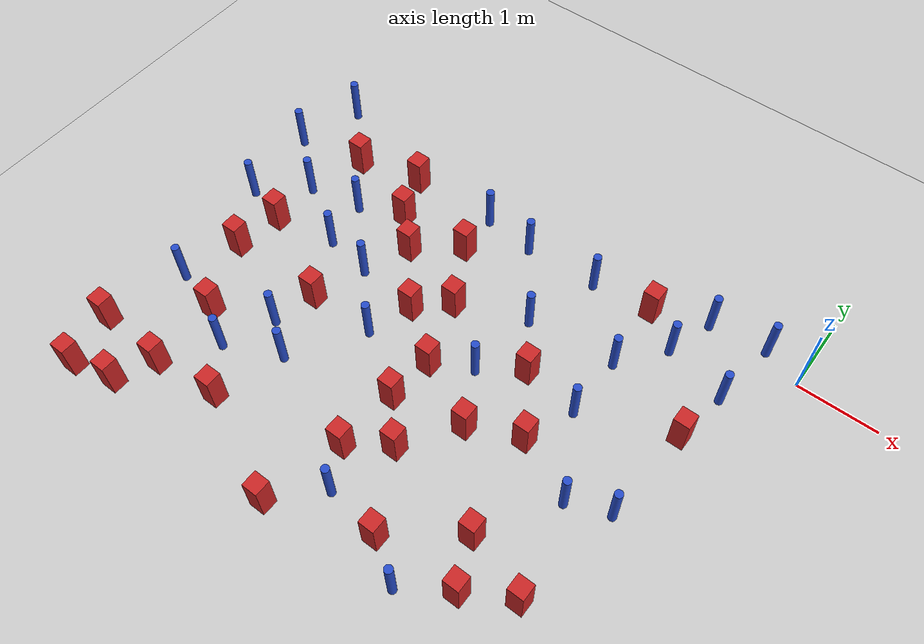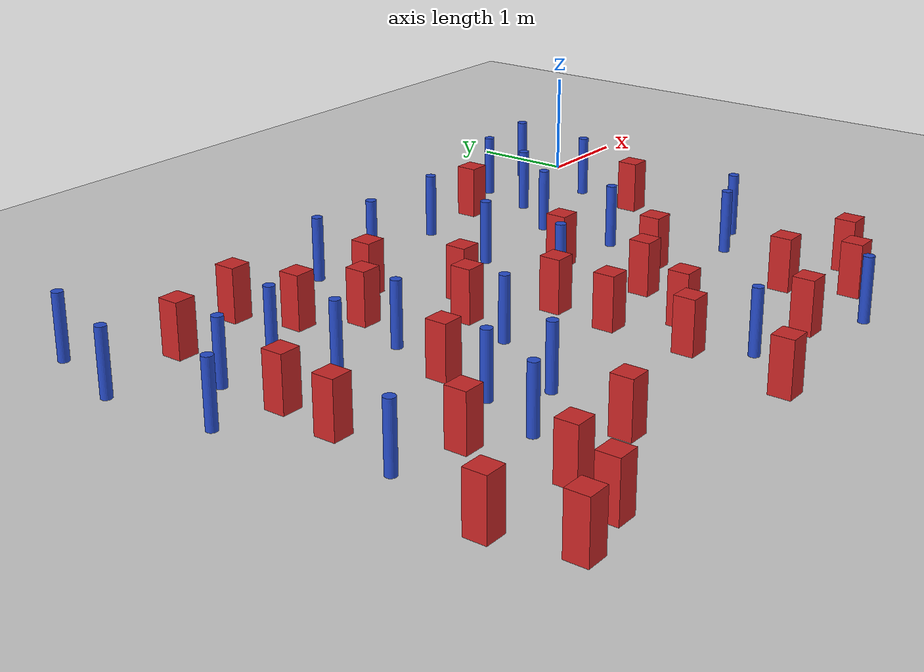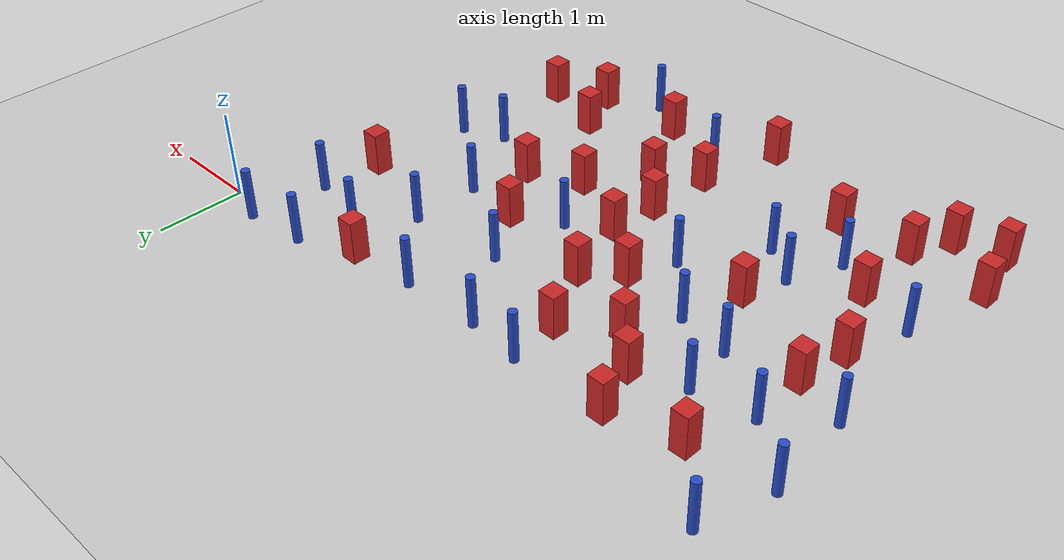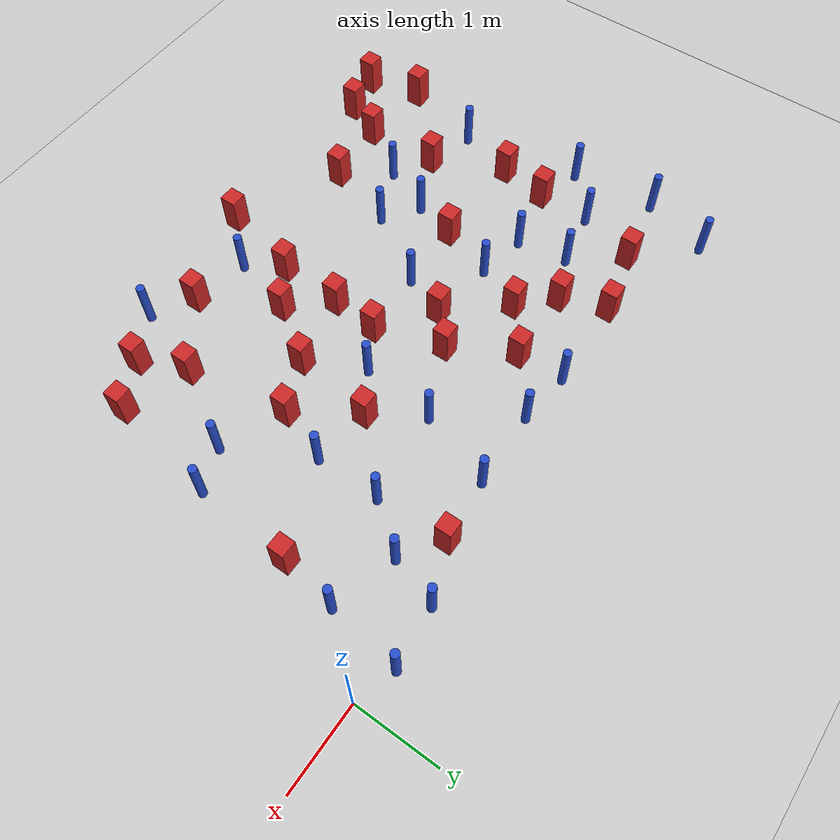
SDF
<sdf version="1.6">
 <world name="default">
  <model name="ground_plane">
   <static>1</static>
   <link name="link">
    <collision name="collision">
     <geometry><plane><normal>0 0 1</normal><size>100 100</size></plane></geometry>
     <surface><friction><ode><mu>100</mu><mu2>50</mu2></ode></friction></surface>
    </collision>
    <visual name="visual">
     <cast_shadows>0</cast_shadows>
     <geometry><plane><normal>0 0 1</normal><size>100 100</size></plane></geometry>
     <material>
      <ambient>1.0 1.0 1.0 1.0</ambient>
      <diffuse>0.8 0.8 0.8 1.0</diffuse>
      <specular>0.01 0.01 0.01 1.000000</specular>
     </material>
    </visual>
   </link>
  </model>
  <model name="square_post_obstacle0">
   <static>true</static>
   <pose>-3.52017883421 -2.92411705398 8.22691968438e-08 7.2212513382e-06 -7.54495500217e-07 2.29674213826e-05</pose>
   <link name="link">
    <pose>0 0 0.25 0 -0 0</pose>
    <inertial>
     <mass>100</mass>
     <inertia>
      <ixx>0.166667</ixx>
      <ixy>0</ixy>
      <ixz>0</ixz>
      <iyy>0.166667</iyy>
      <iyz>0</iyz>
      <izz>0.166667</izz>
     </inertia>
    </inertial>
    <collision name="collision"><geometry><box><size>.2 .2 .5</size></box></geometry></collision>
    <visual name="visual">
     <geometry><box><size>.2 .2 .5</size></box></geometry>
     <material>
      <script><name>Gazebo/Red</name><uri>file://media/materials/scripts/gazebo.material</uri></script>
     </material>
    </visual>
   </link>
  </model>
  <model name="square_post_obstacle3">
   <static>true</static>
   <pose>-2.61809508313 -4.28710218862 8.22691968438e-08 7.2212513382e-06 -7.54495500217e-07 2.29674213826e-05</pose>
   <link name="link">
    <pose>0 0 0.25 0 -0 0</pose>
    <inertial>
     <mass>100</mass>
     <inertia>
      <ixx>0.166667</ixx>
      <ixy>0</ixy>
      <ixz>0</ixz>
      <iyy>0.166667</iyy>
      <iyz>0</iyz>
      <izz>0.166667</izz>
     </inertia>
    </inertial>
    <collision name="collision"><geometry><box><size>.2 .2 .5</size></box></geometry></collision>
    <visual name="visual">
     <geometry><box><size>.2 .2 .5</size></box></geometry>
     <material>
      <script><name>Gazebo/Red</name><uri>file://media/materials/scripts/gazebo.material</uri></script>
     </material>
    </visual>
   </link>
  </model>
  <model name="square_post_obstacle18">
   <static>true</static>
   <pose>-4.13438676228 -0.792070955111 8.22691968438e-08 7.2212513382e-06 -7.54495500217e-07 2.29674213826e-05</pose>
   <link name="link">
    <pose>0 0 0.25 0 -0 0</pose>
    <inertial>
     <mass>100</mass>
     <inertia>
      <ixx>0.166667</ixx>
      <ixy>0</ixy>
      <ixz>0</ixz>
      <iyy>0.166667</iyy>
      <iyz>0</iyz>
      <izz>0.166667</izz>
     </inertia>
    </inertial>
    <collision name="collision"><geometry><box><size>.2 .2 .5</size></box></geometry></collision>
    <visual name="visual">
     <geometry><box><size>.2 .2 .5</size></box></geometry>
     <material>
      <script><name>Gazebo/Red</name><uri>file://media/materials/scripts/gazebo.material</uri></script>
     </material>
    </visual>
   </link>
  </model>
  <model name="pole_obstacle23">
   <static>true</static>
   <pose>-5.52887101835 -1.67814548392 2.88873142074e-08 -9.90536689445e-09 4.60219948999e-07 -1.20965994956e-07</pose>
   <link name="link">
    <pose>0 0 0.3 0 -0 0</pose>
    <inertial>
     <mass>1</mass>
     <inertia><ixx>0.145833</ixx><ixy>0</ixy><ixz>0</ixz><iyy>0.145833</iyy><iyz>0</iyz><izz>0.125</izz></inertia>
    </inertial>
    <collision name="collision">
     <geometry><cylinder><radius>0.05</radius><length>.6</length></cylinder></geometry>
    </collision>
    <visual name="visual">
     <geometry><cylinder><radius>0.05</radius><length>.6</length></cylinder></geometry>
     <material>
      <script><name>Gazebo/Blue</name><uri>file://media/materials/scripts/gazebo.material</uri></script>
     </material>
    </visual>
   </link>
  </model>
  <model name="pole_obstacle24">
   <static>true</static>
   <pose>-1.18255086633 0.0763230548813 2.88873142074e-08 -9.90536689732e-09 4.60219948992e-07 -1.20965994957e-07</pose>
   <link name="link">
    <pose>0 0 0.3 0 -0 0</pose>
    <inertial>
     <mass>1</mass>
     <inertia><ixx>0.145833</ixx><ixy>0</ixy><ixz>0</ixz><iyy>0.145833</iyy><iyz>0</iyz><izz>0.125</izz></inertia>
    </inertial>
    <collision name="collision">
     <geometry><cylinder><radius>0.05</radius><length>.6</length></cylinder></geometry>
    </collision>
    <visual name="visual">
     <geometry><cylinder><radius>0.05</radius><length>.6</length></cylinder></geometry>
     <material>
      <script><name>Gazebo/Blue</name><uri>file://media/materials/scripts/gazebo.material</uri></script>
     </material>
    </visual>
   </link>
  </model>
  <model name="pole_obstacle31">
   <static>true</static>
   <pose>-3.0052027179 -2.07580802084 2.88873142074e-08 -9.90536690232e-09 4.6021994898e-07 -1.20965994968e-07</pose>
   <link name="link">
    <pose>0 0 0.3 0 -0 0</pose>
    <inertial>
     <mass>1</mass>
     <inertia><ixx>0.145833</ixx><ixy>0</ixy><ixz>0</ixz><iyy>0.145833</iyy><iyz>0</iyz><izz>0.125</izz></inertia>
    </inertial>
    <collision name="collision">
     <geometry><cylinder><radius>0.05</radius><length>.6</length></cylinder></geometry>
    </collision>
    <visual name="visual">
     <geometry><cylinder><radius>0.05</radius><length>.6</length></cylinder></geometry>
     <material>
      <script><name>Gazebo/Blue</name><uri>file://media/materials/scripts/gazebo.material</uri></script>
     </material>
    </visual>
   </link>
  </model>
  <model name="pole_obstacle43">
   <static>true</static>
   <pose>-6.30839743142 -1.18968430451 2.88873142074e-08 -9.90536689445e-09 4.60219948999e-07 -1.20965994956e-07</pose>
   <link name="link">
    <pose>0 0 0.3 0 -0 0</pose>
    <inertial>
     <mass>1</mass>
     <inertia><ixx>0.145833</ixx><ixy>0</ixy><ixz>0</ixz><iyy>0.145833</iyy><iyz>0</iyz><izz>0.125</izz></inertia>
    </inertial>
    <collision name="collision">
     <geometry><cylinder><radius>0.05</radius><length>.6</length></cylinder></geometry>
    </collision>
    <visual name="visual">
     <geometry><cylinder><radius>0.05</radius><length>.6</length></cylinder></geometry>
     <material>
      <script><name>Gazebo/Blue</name><uri>file://media/materials/scripts/gazebo.material</uri></script>
     </material>
    </visual>
   </link>
  </model>
  <model name="pole_obstacle47">
   <static>true</static>
   <pose>-0.599268883135 -0.721719197288 2.88873142074e-08 -9.90536689967e-09 4.60219948986e-07 -1.20965994963e-07</pose>
   <link name="link">
    <pose>0 0 0.3 0 -0 0</pose>
    <inertial>
     <mass>1</mass>
     <inertia><ixx>0.145833</ixx><ixy>0</ixy><ixz>0</ixz><iyy>0.145833</iyy><iyz>0</iyz><izz>0.125</izz></inertia>
    </inertial>
    <collision name="collision">
     <geometry><cylinder><radius>0.05</radius><length>.6</length></cylinder></geometry>
    </collision>
    <visual name="visual">
     <geometry><cylinder><radius>0.05</radius><length>.6</length></cylinder></geometry>
     <material>
      <script><name>Gazebo/Blue</name><uri>file://media/materials/scripts/gazebo.material</uri></script>
     </material>
    </visual>
   </link>
  </model>
  <model name="pole_obstacle51">
   <static>true</static>
   <pose>-2.89913517799 -1.16561489375 2.88873142074e-08 -9.90536689395e-09 4.60219949e-07 -1.20965994953e-07</pose>
   <link name="link">
    <pose>0 0 0.3 0 -0 0</pose>
    <inertial>
     <mass>1</mass>
     <inertia><ixx>0.145833</ixx><ixy>0</ixy><ixz>0</ixz><iyy>0.145833</iyy><iyz>0</iyz><izz>0.125</izz></inertia>
    </inertial>
    <collision name="collision">
     <geometry><cylinder><radius>0.05</radius><length>.6</length></cylinder></geometry>
    </collision>
    <visual name="visual">
     <geometry><cylinder><radius>0.05</radius><length>.6</length></cylinder></geometry>
     <material>
      <script><name>Gazebo/Blue</name><uri>file://media/materials/scripts/gazebo.material</uri></script>
     </material>
    </visual>
   </link>
  </model>
  <model name="square_post_obstacle55">
   <static>true</static>
   <pose>-6.07246341507 -0.473921188446 8.22691968438e-08 7.22125133819e-06 -7.54495500217e-07 2.29674213826e-05</pose>
   <link name="link">
    <pose>0 0 0.25 0 -0 0</pose>
    <inertial>
     <mass>100</mass>
     <inertia>
      <ixx>0.166667</ixx>
      <ixy>0</ixy>
      <ixz>0</ixz>
      <iyy>0.166667</iyy>
      <iyz>0</iyz>
      <izz>0.166667</izz>
     </inertia>
    </inertial>
    <collision name="collision"><geometry><box><size>.2 .2 .5</size></box></geometry></collision>
    <visual name="visual">
     <geometry><box><size>.2 .2 .5</size></box></geometry>
     <material>
      <script><name>Gazebo/Red</name><uri>file://media/materials/scripts/gazebo.material</uri></script>
     </material>
    </visual>
   </link>
  </model>
  <model name="square_post_obstacle58">
   <static>true</static>
   <pose>-5.27029998189 -0.277535152743 8.22691968438e-08 7.2212513382e-06 -7.54495500217e-07 2.29674213826e-05</pose>
   <link name="link">
    <pose>0 0 0.25 0 -0 0</pose>
    <inertial>
     <mass>100</mass>
     <inertia>
      <ixx>0.166667</ixx>
      <ixy>0</ixy>
      <ixz>0</ixz>
      <iyy>0.166667</iyy>
      <iyz>0</iyz>
      <izz>0.166667</izz>
     </inertia>
    </inertial>
    <collision name="collision"><geometry><box><size>.2 .2 .5</size></box></geometry></collision>
    <visual name="visual">
     <geometry><box><size>.2 .2 .5</size></box></geometry>
     <material>
      <script><name>Gazebo/Red</name><uri>file://media/materials/scripts/gazebo.material</uri></script>
     </material>
    </visual>
   </link>
  </model>
  <model name="pole_obstacle56">
   <static>true</static>
   <pose>-4.91835925637 -1.7796025843 2.88873142074e-08 -9.90536689445e-09 4.60219948999e-07 -1.20965994956e-07</pose>
   <link name="link">
    <pose>0 0 0.3 0 -0 0</pose>
    <inertial>
     <mass>1</mass>
     <inertia><ixx>0.145833</ixx><ixy>0</ixy><ixz>0</ixz><iyy>0.145833</iyy><iyz>0</iyz><izz>0.125</izz></inertia>
    </inertial>
    <collision name="collision">
     <geometry><cylinder><radius>0.05</radius><length>.6</length></cylinder></geometry>
    </collision>
    <visual name="visual">
     <geometry><cylinder><radius>0.05</radius><length>.6</length></cylinder></geometry>
     <material>
      <script><name>Gazebo/Blue</name><uri>file://media/materials/scripts/gazebo.material</uri></script>
     </material>
    </visual>
   </link>
  </model>
  <model name="square_post_obstacle62">
   <static>true</static>
   <pose>-1.04339955082 -3.9355311973 8.22691968438e-08 7.22125133819e-06 -7.54495500217e-07 2.29674213826e-05</pose>
   <link name="link">
    <pose>0 0 0.25 0 -0 0</pose>
    <inertial>
     <mass>100</mass>
     <inertia>
      <ixx>0.166667</ixx>
      <ixy>0</ixy>
      <ixz>0</ixz>
      <iyy>0.166667</iyy>
      <iyz>0</iyz>
      <izz>0.166667</izz>
     </inertia>
    </inertial>
    <collision name="collision"><geometry><box><size>.2 .2 .5</size></box></geometry></collision>
    <visual name="visual">
     <geometry><box><size>.2 .2 .5</size></box></geometry>
     <material>
      <script><name>Gazebo/Red</name><uri>file://media/materials/scripts/gazebo.material</uri></script>
     </material>
    </visual>
   </link>
  </model>
  <model name="pole_obstacle61">
   <static>true</static>
   <pose>-0.801092550227 -2.60743918164 2.88873142074e-08 -9.90536689636e-09 4.60219948994e-07 -1.20965994958e-07</pose>
   <link name="link">
    <pose>0 0 0.3 0 -0 0</pose>
    <inertial>
     <mass>1</mass>
     <inertia><ixx>0.145833</ixx><ixy>0</ixy><ixz>0</ixz><iyy>0.145833</iyy><iyz>0</iyz><izz>0.125</izz></inertia>
    </inertial>
    <collision name="collision">
     <geometry><cylinder><radius>0.05</radius><length>.6</length></cylinder></geometry>
    </collision>
    <visual name="visual">
     <geometry><cylinder><radius>0.05</radius><length>.6</length></cylinder></geometry>
     <material>
      <script><name>Gazebo/Blue</name><uri>file://media/materials/scripts/gazebo.material</uri></script>
     </material>
    </visual>
   </link>
  </model>
  <model name="pole_obstacle62">
   <static>true</static>
   <pose>-4.86208455189 -3.26866886622 2.88873142074e-08 -9.90536690245e-09 4.6021994898e-07 -1.20965994966e-07</pose>
   <link name="link">
    <pose>0 0 0.3 0 -0 0</pose>
    <inertial>
     <mass>1</mass>
     <inertia><ixx>0.145833</ixx><ixy>0</ixy><ixz>0</ixz><iyy>0.145833</iyy><iyz>0</iyz><izz>0.125</izz></inertia>
    </inertial>
    <collision name="collision">
     <geometry><cylinder><radius>0.05</radius><length>.6</length></cylinder></geometry>
    </collision>
    <visual name="visual">
     <geometry><cylinder><radius>0.05</radius><length>.6</length></cylinder></geometry>
     <material>
      <script><name>Gazebo/Blue</name><uri>file://media/materials/scripts/gazebo.material</uri></script>
     </material>
    </visual>
   </link>
  </model>
  <model name="square_post_obstacle77">
   <static>true</static>
   <pose>-1.83476535139 -0.187113584211 8.22691968438e-08 7.2212513382e-06 -7.54495500217e-07 2.29674213826e-05</pose>
   <link name="link">
    <pose>0 0 0.25 0 -0 0</pose>
    <inertial>
     <mass>100</mass>
     <inertia>
      <ixx>0.166667</ixx>
      <ixy>0</ixy>
      <ixz>0</ixz>
      <iyy>0.166667</iyy>
      <iyz>0</iyz>
      <izz>0.166667</izz>
     </inertia>
    </inertial>
    <collision name="collision"><geometry><box><size>.2 .2 .5</size></box></geometry></collision>
    <visual name="visual">
     <geometry><box><size>.2 .2 .5</size></box></geometry>
     <material>
      <script><name>Gazebo/Red</name><uri>file://media/materials/scripts/gazebo.material</uri></script>
     </material>
    </visual>
   </link>
  </model>
  <model name="square_post_obstacle78">
   <static>true</static>
   <pose>-4.1040688836 -1.87548438319 8.22691968438e-08 7.2212513382e-06 -7.54495500217e-07 2.29674213826e-05</pose>
   <link name="link">
    <pose>0 0 0.25 0 -0 0</pose>
    <inertial>
     <mass>100</mass>
     <inertia>
      <ixx>0.166667</ixx>
      <ixy>0</ixy>
      <ixz>0</ixz>
      <iyy>0.166667</iyy>
      <iyz>0</iyz>
      <izz>0.166667</izz>
     </inertia>
    </inertial>
    <collision name="collision"><geometry><box><size>.2 .2 .5</size></box></geometry></collision>
    <visual name="visual">
     <geometry><box><size>.2 .2 .5</size></box></geometry>
     <material>
      <script><name>Gazebo/Red</name><uri>file://media/materials/scripts/gazebo.material</uri></script>
     </material>
    </visual>
   </link>
  </model>
  <model name="square_post_obstacle79">
   <static>true</static>
   <pose>-5.06626901916 -0.825395817439 8.22691968438e-08 7.2212513382e-06 -7.54495500217e-07 2.29674213826e-05</pose>
   <link name="link">
    <pose>0 0 0.25 0 -0 0</pose>
    <inertial>
     <mass>100</mass>
     <inertia>
      <ixx>0.166667</ixx>
      <ixy>0</ixy>
      <ixz>0</ixz>
      <iyy>0.166667</iyy>
      <iyz>0</iyz>
      <izz>0.166667</izz>
     </inertia>
    </inertial>
    <collision name="collision"><geometry><box><size>.2 .2 .5</size></box></geometry></collision>
    <visual name="visual">
     <geometry><box><size>.2 .2 .5</size></box></geometry>
     <material>
      <script><name>Gazebo/Red</name><uri>file://media/materials/scripts/gazebo.material</uri></script>
     </material>
    </visual>
   </link>
  </model>
  <model name="pole_obstacle82">
   <static>true</static>
   <pose>-1.29118002644 -2.80128167995 2.88873142074e-08 -9.90536689791e-09 4.6021994899e-07 -1.20965994959e-07</pose>
   <link name="link">
    <pose>0 0 0.3 0 -0 0</pose>
    <inertial>
     <mass>1</mass>
     <inertia><ixx>0.145833</ixx><ixy>0</ixy><ixz>0</ixz><iyy>0.145833</iyy><iyz>0</iyz><izz>0.125</izz></inertia>
    </inertial>
    <collision name="collision">
     <geometry><cylinder><radius>0.05</radius><length>.6</length></cylinder></geometry>
    </collision>
    <visual name="visual">
     <geometry><cylinder><radius>0.05</radius><length>.6</length></cylinder></geometry>
     <material>
      <script><name>Gazebo/Blue</name><uri>file://media/materials/scripts/gazebo.material</uri></script>
     </material>
    </visual>
   </link>
  </model>
  <model name="pole_obstacle84">
   <static>true</static>
   <pose>-1.80832034895 -1.84570549597 2.88873142074e-08 -9.90536689672e-09 4.60219948993e-07 -1.20965994959e-07</pose>
   <link name="link">
    <pose>0 0 0.3 0 -0 0</pose>
    <inertial>
     <mass>1</mass>
     <inertia><ixx>0.145833</ixx><ixy>0</ixy><ixz>0</ixz><iyy>0.145833</iyy><iyz>0</iyz><izz>0.125</izz></inertia>
    </inertial>
    <collision name="collision">
     <geometry><cylinder><radius>0.05</radius><length>.6</length></cylinder></geometry>
    </collision>
    <visual name="visual">
     <geometry><cylinder><radius>0.05</radius><length>.6</length></cylinder></geometry>
     <material>
      <script><name>Gazebo/Blue</name><uri>file://media/materials/scripts/gazebo.material</uri></script>
     </material>
    </visual>
   </link>
  </model>
  <model name="pole_obstacle93">
   <static>true</static>
   <pose>-5.28124433528 -2.96419347455 2.88873142074e-08 -9.90536690245e-09 4.6021994898e-07 -1.20965994966e-07</pose>
   <link name="link">
    <pose>0 0 0.3 0 -0 0</pose>
    <inertial>
     <mass>1</mass>
     <inertia><ixx>0.145833</ixx><ixy>0</ixy><ixz>0</ixz><iyy>0.145833</iyy><iyz>0</iyz><izz>0.125</izz></inertia>
    </inertial>
    <collision name="collision">
     <geometry><cylinder><radius>0.05</radius><length>.6</length></cylinder></geometry>
    </collision>
    <visual name="visual">
     <geometry><cylinder><radius>0.05</radius><length>.6</length></cylinder></geometry>
     <material>
      <script><name>Gazebo/Blue</name><uri>file://media/materials/scripts/gazebo.material</uri></script>
     </material>
    </visual>
   </link>
  </model>
  <model name="square_post_obstacle84">
   <static>true</static>
   <pose>-4.67191701929 -1.20693763902 8.22691968438e-08 7.2212513382e-06 -7.54495500217e-07 2.29674213826e-05</pose>
   <link name="link">
    <pose>0 0 0.25 0 -0 0</pose>
    <inertial>
     <mass>100</mass>
     <inertia>
      <ixx>0.166667</ixx>
      <ixy>0</ixy>
      <ixz>0</ixz>
      <iyy>0.166667</iyy>
      <iyz>0</iyz>
      <izz>0.166667</izz>
     </inertia>
    </inertial>
    <collision name="collision"><geometry><box><size>.2 .2 .5</size></box></geometry></collision>
    <visual name="visual">
     <geometry><box><size>.2 .2 .5</size></box></geometry>
     <material>
      <script><name>Gazebo/Red</name><uri>file://media/materials/scripts/gazebo.material</uri></script>
     </material>
    </visual>
   </link>
  </model>
  <model name="square_post_obstacle86">
   <static>true</static>
   <pose>-6.16498773347 -4.66272879017 8.22691968438e-08 7.22125133819e-06 -7.54495500217e-07 2.29674213826e-05</pose>
   <link name="link">
    <pose>0 0 0.25 0 -0 0</pose>
    <inertial>
     <mass>100</mass>
     <inertia>
      <ixx>0.166667</ixx>
      <ixy>0</ixy>
      <ixz>0</ixz>
      <iyy>0.166667</iyy>
      <iyz>0</iyz>
      <izz>0.166667</izz>
     </inertia>
    </inertial>
    <collision name="collision"><geometry><box><size>.2 .2 .5</size></box></geometry></collision>
    <visual name="visual">
     <geometry><box><size>.2 .2 .5</size></box></geometry>
     <material>
      <script><name>Gazebo/Red</name><uri>file://media/materials/scripts/gazebo.material</uri></script>
     </material>
    </visual>
   </link>
  </model>
  <model name="pole_obstacle99">
   <static>true</static>
   <pose>-5.54504558696 -3.57914411246 2.88873142074e-08 -9.90536690245e-09 4.6021994898e-07 -1.20965994966e-07</pose>
   <link name="link">
    <pose>0 0 0.3 0 -0 0</pose>
    <inertial>
     <mass>1</mass>
     <inertia><ixx>0.145833</ixx><ixy>0</ixy><ixz>0</ixz><iyy>0.145833</iyy><iyz>0</iyz><izz>0.125</izz></inertia>
    </inertial>
    <collision name="collision">
     <geometry><cylinder><radius>0.05</radius><length>.6</length></cylinder></geometry>
    </collision>
    <visual name="visual">
     <geometry><cylinder><radius>0.05</radius><length>.6</length></cylinder></geometry>
     <material>
      <script><name>Gazebo/Blue</name><uri>file://media/materials/scripts/gazebo.material</uri></script>
     </material>
    </visual>
   </link>
  </model>
  <model name="square_post_obstacle90">
   <static>true</static>
   <pose>-2.65400493957 -2.73656602366 8.22691968438e-08 7.2212513382e-06 -7.54495500217e-07 2.29674213826e-05</pose>
   <link name="link">
    <pose>0 0 0.25 0 -0 0</pose>
    <inertial>
     <mass>100</mass>
     <inertia>
      <ixx>0.166667</ixx>
      <ixy>0</ixy>
      <ixz>0</ixz>
      <iyy>0.166667</iyy>
      <iyz>0</iyz>
      <izz>0.166667</izz>
     </inertia>
    </inertial>
    <collision name="collision"><geometry><box><size>.2 .2 .5</size></box></geometry></collision>
    <visual name="visual">
     <geometry><box><size>.2 .2 .5</size></box></geometry>
     <material>
      <script><name>Gazebo/Red</name><uri>file://media/materials/scripts/gazebo.material</uri></script>
     </material>
    </visual>
   </link>
  </model>
  <model name="square_post_obstacle109">
   <static>true</static>
   <pose>-6.85219485312 -4.12359246405 8.22691968438e-08 7.22125133819e-06 -7.54495500217e-07 2.29674213826e-05</pose>
   <link name="link">
    <pose>0 0 0.25 0 -0 0</pose>
    <inertial>
     <mass>100</mass>
     <inertia>
      <ixx>0.166667</ixx>
      <ixy>0</ixy>
      <ixz>0</ixz>
      <iyy>0.166667</iyy>
      <iyz>0</iyz>
      <izz>0.166667</izz>
     </inertia>
    </inertial>
    <collision name="collision"><geometry><box><size>.2 .2 .5</size></box></geometry></collision>
    <visual name="visual">
     <geometry><box><size>.2 .2 .5</size></box></geometry>
     <material>
      <script><name>Gazebo/Red</name><uri>file://media/materials/scripts/gazebo.material</uri></script>
     </material>
    </visual>
   </link>
  </model>
  <model name="pole_obstacle128">
   <static>true</static>
   <pose>-0.478040595308 0.156750851464 2.88873142074e-08 -9.90536690111e-09 4.60219948983e-07 -1.20965994964e-07</pose>
   <link name="link">
    <pose>0 0 0.3 0 -0 0</pose>
    <inertial>
     <mass>1</mass>
     <inertia><ixx>0.145833</ixx><ixy>0</ixy><ixz>0</ixz><iyy>0.145833</iyy><iyz>0</iyz><izz>0.125</izz></inertia>
    </inertial>
    <collision name="collision">
     <geometry><cylinder><radius>0.05</radius><length>.6</length></cylinder></geometry>
    </collision>
    <visual name="visual">
     <geometry><cylinder><radius>0.05</radius><length>.6</length></cylinder></geometry>
     <material>
      <script><name>Gazebo/Blue</name><uri>file://media/materials/scripts/gazebo.material</uri></script>
     </material>
    </visual>
   </link>
  </model>
  <model name="square_post_obstacle115">
   <static>true</static>
   <pose>-0.717629115129 -1.39993603011 8.22691968438e-08 7.2212513382e-06 -7.54495500217e-07 2.29674213826e-05</pose>
   <link name="link">
    <pose>0 0 0.25 0 -0 0</pose>
    <inertial>
     <mass>100</mass>
     <inertia>
      <ixx>0.166667</ixx>
      <ixy>0</ixy>
      <ixz>0</ixz>
      <iyy>0.166667</iyy>
      <iyz>0</iyz>
      <izz>0.166667</izz>
     </inertia>
    </inertial>
    <collision name="collision"><geometry><box><size>.2 .2 .5</size></box></geometry></collision>
    <visual name="visual">
     <geometry><box><size>.2 .2 .5</size></box></geometry>
     <material>
      <script><name>Gazebo/Red</name><uri>file://media/materials/scripts/gazebo.material</uri></script>
     </material>
    </visual>
   </link>
  </model>
  <model name="square_post_obstacle124">
   <static>true</static>
   <pose>-3.73324264815 -1.53263595854 8.22691968438e-08 7.22125133819e-06 -7.54495500217e-07 2.29674213826e-05</pose>
   <link name="link">
    <pose>0 0 0.25 0 -0 0</pose>
    <inertial>
     <mass>100</mass>
     <inertia>
      <ixx>0.166667</ixx>
      <ixy>0</ixy>
      <ixz>0</ixz>
      <iyy>0.166667</iyy>
      <iyz>0</iyz>
      <izz>0.166667</izz>
     </inertia>
    </inertial>
    <collision name="collision"><geometry><box><size>.2 .2 .5</size></box></geometry></collision>
    <visual name="visual">
     <geometry><box><size>.2 .2 .5</size></box></geometry>
     <material>
      <script><name>Gazebo/Red</name><uri>file://media/materials/scripts/gazebo.material</uri></script>
     </material>
    </visual>
   </link>
  </model>
  <model name="pole_obstacle140">
   <static>true</static>
   <pose>-6.96463401318 -0.633812126956 2.88873142074e-08 -9.90536689837e-09 4.60219948989e-07 -1.2096599496e-07</pose>
   <link name="link">
    <pose>0 0 0.3 0 -0 0</pose>
    <inertial>
     <mass>1</mass>
     <inertia><ixx>0.145833</ixx><ixy>0</ixy><ixz>0</ixz><iyy>0.145833</iyy><iyz>0</iyz><izz>0.125</izz></inertia>
    </inertial>
    <collision name="collision">
     <geometry><cylinder><radius>0.05</radius><length>.6</length></cylinder></geometry>
    </collision>
    <visual name="visual">
     <geometry><cylinder><radius>0.05</radius><length>.6</length></cylinder></geometry>
     <material>
      <script><name>Gazebo/Blue</name><uri>file://media/materials/scripts/gazebo.material</uri></script>
     </material>
    </visual>
   </link>
  </model>
  <model name="pole_obstacle141">
   <static>true</static>
   <pose>-3.31855854258 -4.18182893688 2.88873142074e-08 -9.90536692062e-09 4.60219948937e-07 -1.20965994985e-07</pose>
   <link name="link">
    <pose>0 0 0.3 0 -0 0</pose>
    <inertial>
     <mass>1</mass>
     <inertia><ixx>0.145833</ixx><ixy>0</ixy><ixz>0</ixz><iyy>0.145833</iyy><iyz>0</iyz><izz>0.125</izz></inertia>
    </inertial>
    <collision name="collision">
     <geometry><cylinder><radius>0.05</radius><length>.6</length></cylinder></geometry>
    </collision>
    <visual name="visual">
     <geometry><cylinder><radius>0.05</radius><length>.6</length></cylinder></geometry>
     <material>
      <script><name>Gazebo/Blue</name><uri>file://media/materials/scripts/gazebo.material</uri></script>
     </material>
    </visual>
   </link>
  </model>
  <model name="square_post_obstacle130">
   <static>true</static>
   <pose>-5.12004971405 -4.10711926304 8.22691968438e-08 7.2212513382e-06 -7.54495500217e-07 2.29674213826e-05</pose>
   <link name="link">
    <pose>0 0 0.25 0 -0 0</pose>
    <inertial>
     <mass>100</mass>
     <inertia>
      <ixx>0.166667</ixx>
      <ixy>0</ixy>
      <ixz>0</ixz>
      <iyy>0.166667</iyy>
      <iyz>0</iyz>
      <izz>0.166667</izz>
     </inertia>
    </inertial>
    <collision name="collision"><geometry><box><size>.2 .2 .5</size></box></geometry></collision>
    <visual name="visual">
     <geometry><box><size>.2 .2 .5</size></box></geometry>
     <material>
      <script><name>Gazebo/Red</name><uri>file://media/materials/scripts/gazebo.material</uri></script>
     </material>
    </visual>
   </link>
  </model>
  <model name="square_post_obstacle137">
   <static>true</static>
   <pose>-3.56487193608 -3.71405950145 8.22691968438e-08 7.2212513382e-06 -7.54495500217e-07 2.29674213826e-05</pose>
   <link name="link">
    <pose>0 0 0.25 0 -0 0</pose>
    <inertial>
     <mass>100</mass>
     <inertia>
      <ixx>0.166667</ixx>
      <ixy>0</ixy>
      <ixz>0</ixz>
      <iyy>0.166667</iyy>
      <iyz>0</iyz>
      <izz>0.166667</izz>
     </inertia>
    </inertial>
    <collision name="collision"><geometry><box><size>.2 .2 .5</size></box></geometry></collision>
    <visual name="visual">
     <geometry><box><size>.2 .2 .5</size></box></geometry>
     <material>
      <script><name>Gazebo/Red</name><uri>file://media/materials/scripts/gazebo.material</uri></script>
     </material>
    </visual>
   </link>
  </model>
  <model name="pole_obstacle150">
   <static>true</static>
   <pose>-6.86349013803 -1.66819399284 2.88873142074e-08 -9.90536689445e-09 4.60219948999e-07 -1.20965994956e-07</pose>
   <link name="link">
    <pose>0 0 0.3 0 -0 0</pose>
    <inertial>
     <mass>1</mass>
     <inertia><ixx>0.145833</ixx><ixy>0</ixy><ixz>0</ixz><iyy>0.145833</iyy><iyz>0</iyz><izz>0.125</izz></inertia>
    </inertial>
    <collision name="collision">
     <geometry><cylinder><radius>0.05</radius><length>.6</length></cylinder></geometry>
    </collision>
    <visual name="visual">
     <geometry><cylinder><radius>0.05</radius><length>.6</length></cylinder></geometry>
     <material>
      <script><name>Gazebo/Blue</name><uri>file://media/materials/scripts/gazebo.material</uri></script>
     </material>
    </visual>
   </link>
  </model>
  <model name="square_post_obstacle144">
   <static>true</static>
   <pose>-5.98112594347 -3.28986917125 8.22691968438e-08 7.2212513382e-06 -7.54495500217e-07 2.29674213826e-05</pose>
   <link name="link">
    <pose>0 0 0.25 0 -0 0</pose>
    <inertial>
     <mass>100</mass>
     <inertia>
      <ixx>0.166667</ixx>
      <ixy>0</ixy>
      <ixz>0</ixz>
      <iyy>0.166667</iyy>
      <iyz>0</iyz>
      <izz>0.166667</izz>
     </inertia>
    </inertial>
    <collision name="collision"><geometry><box><size>.2 .2 .5</size></box></geometry></collision>
    <visual name="visual">
     <geometry><box><size>.2 .2 .5</size></box></geometry>
     <material>
      <script><name>Gazebo/Red</name><uri>file://media/materials/scripts/gazebo.material</uri></script>
     </material>
    </visual>
   </link>
  </model>
  <model name="square_post_obstacle146">
   <static>true</static>
   <pose>-2.51304983601 -1.75074206891 8.22691968438e-08 7.2212513382e-06 -7.54495500217e-07 2.29674213826e-05</pose>
   <link name="link">
    <pose>0 0 0.25 0 -0 0</pose>
    <inertial>
     <mass>100</mass>
     <inertia>
      <ixx>0.166667</ixx>
      <ixy>0</ixy>
      <ixz>0</ixz>
      <iyy>0.166667</iyy>
      <iyz>0</iyz>
      <izz>0.166667</izz>
     </inertia>
    </inertial>
    <collision name="collision"><geometry><box><size>.2 .2 .5</size></box></geometry></collision>
    <visual name="visual">
     <geometry><box><size>.2 .2 .5</size></box></geometry>
     <material>
      <script><name>Gazebo/Red</name><uri>file://media/materials/scripts/gazebo.material</uri></script>
     </material>
    </visual>
   </link>
  </model>
  <model name="pole_obstacle159">
   <static>true</static>
   <pose>-6.60295670167 -3.14364328433 2.88873142074e-08 -9.90536690245e-09 4.6021994898e-07 -1.20965994966e-07</pose>
   <link name="link">
    <pose>0 0 0.3 0 -0 0</pose>
    <inertial>
     <mass>1</mass>
     <inertia><ixx>0.145833</ixx><ixy>0</ixy><ixz>0</ixz><iyy>0.145833</iyy><iyz>0</iyz><izz>0.125</izz></inertia>
    </inertial>
    <collision name="collision">
     <geometry><cylinder><radius>0.05</radius><length>.6</length></cylinder></geometry>
    </collision>
    <visual name="visual">
     <geometry><cylinder><radius>0.05</radius><length>.6</length></cylinder></geometry>
     <material>
      <script><name>Gazebo/Blue</name><uri>file://media/materials/scripts/gazebo.material</uri></script>
     </material>
    </visual>
   </link>
  </model>
  <model name="pole_obstacle164">
   <static>true</static>
   <pose>-1.7990694764 -1.05402176296 2.88873142074e-08 -9.90536689672e-09 4.60219948993e-07 -1.20965994959e-07</pose>
   <link name="link">
    <pose>0 0 0.3 0 -0 0</pose>
    <inertial>
     <mass>1</mass>
     <inertia><ixx>0.145833</ixx><ixy>0</ixy><ixz>0</ixz><iyy>0.145833</iyy><iyz>0</iyz><izz>0.125</izz></inertia>
    </inertial>
    <collision name="collision">
     <geometry><cylinder><radius>0.05</radius><length>.6</length></cylinder></geometry>
    </collision>
    <visual name="visual">
     <geometry><cylinder><radius>0.05</radius><length>.6</length></cylinder></geometry>
     <material>
      <script><name>Gazebo/Blue</name><uri>file://media/materials/scripts/gazebo.material</uri></script>
     </material>
    </visual>
   </link>
  </model>
  <model name="pole_obstacle177">
   <static>true</static>
   <pose>-2.13557701036 -4.59544005511 2.88873142074e-08 -9.90536689859e-09 4.60219948989e-07 -1.20965994961e-07</pose>
   <link name="link">
    <pose>0 0 0.3 0 -0 0</pose>
    <inertial>
     <mass>1</mass>
     <inertia><ixx>0.145833</ixx><ixy>0</ixy><ixz>0</ixz><iyy>0.145833</iyy><iyz>0</iyz><izz>0.125</izz></inertia>
    </inertial>
    <collision name="collision">
     <geometry><cylinder><radius>0.05</radius><length>.6</length></cylinder></geometry>
    </collision>
    <visual name="visual">
     <geometry><cylinder><radius>0.05</radius><length>.6</length></cylinder></geometry>
     <material>
      <script><name>Gazebo/Blue</name><uri>file://media/materials/scripts/gazebo.material</uri></script>
     </material>
    </visual>
   </link>
  </model>
  <model name="square_post_obstacle168">
   <static>true</static>
   <pose>-1.82516982963 -3.68354177087 8.22691968438e-08 7.2212513382e-06 -7.54495500217e-07 2.29674213826e-05</pose>
   <link name="link">
    <pose>0 0 0.25 0 -0 0</pose>
    <inertial>
     <mass>100</mass>
     <inertia>
      <ixx>0.166667</ixx>
      <ixy>0</ixy>
      <ixz>0</ixz>
      <iyy>0.166667</iyy>
      <iyz>0</iyz>
      <izz>0.166667</izz>
     </inertia>
    </inertial>
    <collision name="collision"><geometry><box><size>.2 .2 .5</size></box></geometry></collision>
    <visual name="visual">
     <geometry><box><size>.2 .2 .5</size></box></geometry>
     <material>
      <script><name>Gazebo/Red</name><uri>file://media/materials/scripts/gazebo.material</uri></script>
     </material>
    </visual>
   </link>
  </model>
  <model name="pole_obstacle178">
   <static>true</static>
   <pose>-3.51652206479 -0.300580772572 2.88873142074e-08 -9.90536690784e-09 4.60219948967e-07 -1.20965994976e-07</pose>
   <link name="link">
    <pose>0 0 0.3 0 -0 0</pose>
    <inertial>
     <mass>1</mass>
     <inertia><ixx>0.145833</ixx><ixy>0</ixy><ixz>0</ixz><iyy>0.145833</iyy><iyz>0</iyz><izz>0.125</izz></inertia>
    </inertial>
    <collision name="collision">
     <geometry><cylinder><radius>0.05</radius><length>.6</length></cylinder></geometry>
    </collision>
    <visual name="visual">
     <geometry><cylinder><radius>0.05</radius><length>.6</length></cylinder></geometry>
     <material>
      <script><name>Gazebo/Blue</name><uri>file://media/materials/scripts/gazebo.material</uri></script>
     </material>
    </visual>
   </link>
  </model>
  <model name="pole_obstacle185">
   <static>true</static>
   <pose>-4.17066796314 -0.231042173687 2.88873142074e-08 -9.90536689628e-09 4.60219948994e-07 -1.20965994959e-07</pose>
   <link name="link">
    <pose>0 0 0.3 0 -0 0</pose>
    <inertial>
     <mass>1</mass>
     <inertia><ixx>0.145833</ixx><ixy>0</ixy><ixz>0</ixz><iyy>0.145833</iyy><iyz>0</iyz><izz>0.125</izz></inertia>
    </inertial>
    <collision name="collision">
     <geometry><cylinder><radius>0.05</radius><length>.6</length></cylinder></geometry>
    </collision>
    <visual name="visual">
     <geometry><cylinder><radius>0.05</radius><length>.6</length></cylinder></geometry>
     <material>
      <script><name>Gazebo/Blue</name><uri>file://media/materials/scripts/gazebo.material</uri></script>
     </material>
    </visual>
   </link>
  </model>
  <model name="square_post_obstacle174">
   <static>true</static>
   <pose>-6.29287996472 -1.82982515767 8.22691968438e-08 7.2212513382e-06 -7.54495500217e-07 2.29674213826e-05</pose>
   <link name="link">
    <pose>0 0 0.25 0 -0 0</pose>
    <inertial>
     <mass>100</mass>
     <inertia>
      <ixx>0.166667</ixx>
      <ixy>0</ixy>
      <ixz>0</ixz>
      <iyy>0.166667</iyy>
      <iyz>0</iyz>
      <izz>0.166667</izz>
     </inertia>
    </inertial>
    <collision name="collision"><geometry><box><size>.2 .2 .5</size></box></geometry></collision>
    <visual name="visual">
     <geometry><box><size>.2 .2 .5</size></box></geometry>
     <material>
      <script><name>Gazebo/Red</name><uri>file://media/materials/scripts/gazebo.material</uri></script>
     </material>
    </visual>
   </link>
  </model>
  <model name="square_post_obstacle199">
   <static>true</static>
   <pose>-6.38737791958 -2.419813342 8.22691968438e-08 7.2212513382e-06 -7.54495500217e-07 2.29674213826e-05</pose>
   <link name="link">
    <pose>0 0 0.25 0 -0 0</pose>
    <inertial>
     <mass>100</mass>
     <inertia>
      <ixx>0.166667</ixx>
      <ixy>0</ixy>
      <ixz>0</ixz>
      <iyy>0.166667</iyy>
      <iyz>0</iyz>
      <izz>0.166667</izz>
     </inertia>
    </inertial>
    <collision name="collision"><geometry><box><size>.2 .2 .5</size></box></geometry></collision>
    <visual name="visual">
     <geometry><box><size>.2 .2 .5</size></box></geometry>
     <material>
      <script><name>Gazebo/Red</name><uri>file://media/materials/scripts/gazebo.material</uri></script>
     </material>
    </visual>
   </link>
  </model>
  <model name="square_post_obstacle202">
   <static>true</static>
   <pose>-6.69260245267 -4.78184601647 8.22691968438e-08 7.22125133819e-06 -7.54495500217e-07 2.29674213826e-05</pose>
   <link name="link">
    <pose>0 0 0.25 0 -0 0</pose>
    <inertial>
     <mass>100</mass>
     <inertia>
      <ixx>0.166667</ixx>
      <ixy>0</ixy>
      <ixz>0</ixz>
      <iyy>0.166667</iyy>
      <iyz>0</iyz>
      <izz>0.166667</izz>
     </inertia>
    </inertial>
    <collision name="collision"><geometry><box><size>.2 .2 .5</size></box></geometry></collision>
    <visual name="visual">
     <geometry><box><size>.2 .2 .5</size></box></geometry>
     <material>
      <script><name>Gazebo/Red</name><uri>file://media/materials/scripts/gazebo.material</uri></script>
     </material>
    </visual>
   </link>
  </model>
  <model name="square_post_obstacle203">
   <static>true</static>
   <pose>-3.09742655471 -3.38820438515 8.22691968438e-08 7.2212513382e-06 -7.54495500217e-07 2.29674213826e-05</pose>
   <link name="link">
    <pose>0 0 0.25 0 -0 0</pose>
    <inertial>
     <mass>100</mass>
     <inertia>
      <ixx>0.166667</ixx>
      <ixy>0</ixy>
      <ixz>0</ixz>
      <iyy>0.166667</iyy>
      <iyz>0</iyz>
      <izz>0.166667</izz>
     </inertia>
    </inertial>
    <collision name="collision"><geometry><box><size>.2 .2 .5</size></box></geometry></collision>
    <visual name="visual">
     <geometry><box><size>.2 .2 .5</size></box></geometry>
     <material>
      <script><name>Gazebo/Red</name><uri>file://media/materials/scripts/gazebo.material</uri></script>
     </material>
    </visual>
   </link>
  </model>
  <model name="pole_obstacle199">
   <static>true</static>
   <pose>-2.59185352271 -0.263414471517 2.88873142074e-08 -9.90536692022e-09 4.60219948938e-07 -1.20965994984e-07</pose>
   <link name="link">
    <pose>0 0 0.3 0 -0 0</pose>
    <inertial>
     <mass>1</mass>
     <inertia><ixx>0.145833</ixx><ixy>0</ixy><ixz>0</ixz><iyy>0.145833</iyy><iyz>0</iyz><izz>0.125</izz></inertia>
    </inertial>
    <collision name="collision">
     <geometry><cylinder><radius>0.05</radius><length>.6</length></cylinder></geometry>
    </collision>
    <visual name="visual">
     <geometry><cylinder><radius>0.05</radius><length>.6</length></cylinder></geometry>
     <material>
      <script><name>Gazebo/Blue</name><uri>file://media/materials/scripts/gazebo.material</uri></script>
     </material>
    </visual>
   </link>
  </model>
  <model name="pole_obstacle202">
   <static>true</static>
   <pose>-6.7186562553 0.175705125172 2.88873142074e-08 -9.90536689378e-09 4.60219949e-07 -1.20965994955e-07</pose>
   <link name="link">
    <pose>0 0 0.3 0 -0 0</pose>
    <inertial>
     <mass>1</mass>
     <inertia><ixx>0.145833</ixx><ixy>0</ixy><ixz>0</ixz><iyy>0.145833</iyy><iyz>0</iyz><izz>0.125</izz></inertia>
    </inertial>
    <collision name="collision">
     <geometry><cylinder><radius>0.05</radius><length>.6</length></cylinder></geometry>
    </collision>
    <visual name="visual">
     <geometry><cylinder><radius>0.05</radius><length>.6</length></cylinder></geometry>
     <material>
      <script><name>Gazebo/Blue</name><uri>file://media/materials/scripts/gazebo.material</uri></script>
     </material>
    </visual>
   </link>
  </model>
  <model name="pole_obstacle204">
   <static>true</static>
   <pose>-4.30430746455 -2.41198280482 2.88873142074e-08 -9.90536690245e-09 4.6021994898e-07 -1.20965994966e-07</pose>
   <link name="link">
    <pose>0 0 0.3 0 -0 0</pose>
    <inertial>
     <mass>1</mass>
     <inertia><ixx>0.145833</ixx><ixy>0</ixy><ixz>0</ixz><iyy>0.145833</iyy><iyz>0</iyz><izz>0.125</izz></inertia>
    </inertial>
    <collision name="collision">
     <geometry><cylinder><radius>0.05</radius><length>.6</length></cylinder></geometry>
    </collision>
    <visual name="visual">
     <geometry><cylinder><radius>0.05</radius><length>.6</length></cylinder></geometry>
     <material>
      <script><name>Gazebo/Blue</name><uri>file://media/materials/scripts/gazebo.material</uri></script>
     </material>
    </visual>
   </link>
  </model>
  <model name="square_post_obstacle214">
   <static>true</static>
   <pose>-3.46709615457 -2.3446278753 8.22691968438e-08 7.2212513382e-06 -7.54495500217e-07 2.29674213826e-05</pose>
   <link name="link">
    <pose>0 0 0.25 0 -0 0</pose>
    <inertial>
     <mass>100</mass>
     <inertia>
      <ixx>0.166667</ixx>
      <ixy>0</ixy>
      <ixz>0</ixz>
      <iyy>0.166667</iyy>
      <iyz>0</iyz>
      <izz>0.166667</izz>
     </inertia>
    </inertial>
    <collision name="collision"><geometry><box><size>.2 .2 .5</size></box></geometry></collision>
    <visual name="visual">
     <geometry><box><size>.2 .2 .5</size></box></geometry>
     <material>
      <script><name>Gazebo/Red</name><uri>file://media/materials/scripts/gazebo.material</uri></script>
     </material>
    </visual>
   </link>
  </model>
  <model name="square_post_obstacle218">
   <static>true</static>
   <pose>-3.8132402407 -4.70192143194 8.22691968438e-08 7.2212513382e-06 -7.54495500217e-07 2.29674213826e-05</pose>
   <link name="link">
    <pose>0 0 0.25 0 -0 0</pose>
    <inertial>
     <mass>100</mass>
     <inertia>
      <ixx>0.166667</ixx>
      <ixy>0</ixy>
      <ixz>0</ixz>
      <iyy>0.166667</iyy>
      <iyz>0</iyz>
      <izz>0.166667</izz>
     </inertia>
    </inertial>
    <collision name="collision"><geometry><box><size>.2 .2 .5</size></box></geometry></collision>
    <visual name="visual">
     <geometry><box><size>.2 .2 .5</size></box></geometry>
     <material>
      <script><name>Gazebo/Red</name><uri>file://media/materials/scripts/gazebo.material</uri></script>
     </material>
    </visual>
   </link>
  </model>
  <model name="square_post_obstacle219">
   <static>true</static>
   <pose>-2.03812998198 -2.46272582105 8.22691968438e-08 7.2212513382e-06 -7.54495500217e-07 2.29674213826e-05</pose>
   <link name="link">
    <pose>0 0 0.25 0 -0 0</pose>
    <inertial>
     <mass>100</mass>
     <inertia>
      <ixx>0.166667</ixx>
      <ixy>0</ixy>
      <ixz>0</ixz>
      <iyy>0.166667</iyy>
      <iyz>0</iyz>
      <izz>0.166667</izz>
     </inertia>
    </inertial>
    <collision name="collision"><geometry><box><size>.2 .2 .5</size></box></geometry></collision>
    <visual name="visual">
     <geometry><box><size>.2 .2 .5</size></box></geometry>
     <material>
      <script><name>Gazebo/Red</name><uri>file://media/materials/scripts/gazebo.material</uri></script>
     </material>
    </visual>
   </link>
  </model>
  <model name="square_post_obstacle224">
   <static>true</static>
   <pose>-1.58570556544 -4.24541198461 8.22691968438e-08 7.2212513382e-06 -7.54495500217e-07 2.29674213826e-05</pose>
   <link name="link">
    <pose>0 0 0.25 0 -0 0</pose>
    <inertial>
     <mass>100</mass>
     <inertia>
      <ixx>0.166667</ixx>
      <ixy>0</ixy>
      <ixz>0</ixz>
      <iyy>0.166667</iyy>
      <iyz>0</iyz>
      <izz>0.166667</izz>
     </inertia>
    </inertial>
    <collision name="collision"><geometry><box><size>.2 .2 .5</size></box></geometry></collision>
    <visual name="visual">
     <geometry><box><size>.2 .2 .5</size></box></geometry>
     <material>
      <script><name>Gazebo/Red</name><uri>file://media/materials/scripts/gazebo.material</uri></script>
     </material>
    </visual>
   </link>
  </model>
  <model name="square_post_obstacle233">
   <static>true</static>
   <pose>-5.13228688151 -2.43473110377 8.22691968438e-08 7.2212513382e-06 -7.54495500217e-07 2.29674213826e-05</pose>
   <link name="link">
    <pose>0 0 0.25 0 -0 0</pose>
    <inertial>
     <mass>100</mass>
     <inertia>
      <ixx>0.166667</ixx>
      <ixy>0</ixy>
      <ixz>0</ixz>
      <iyy>0.166667</iyy>
      <iyz>0</iyz>
      <izz>0.166667</izz>
     </inertia>
    </inertial>
    <collision name="collision"><geometry><box><size>.2 .2 .5</size></box></geometry></collision>
    <visual name="visual">
     <geometry><box><size>.2 .2 .5</size></box></geometry>
     <material>
      <script><name>Gazebo/Red</name><uri>file://media/materials/scripts/gazebo.material</uri></script>
     </material>
    </visual>
   </link>
  </model>
  <model name="square_post_obstacle235">
   <static>true</static>
   <pose>-5.9401195546 -4.19282154896 8.22691968438e-08 7.2212513382e-06 -7.54495500217e-07 2.29674213826e-05</pose>
   <link name="link">
    <pose>0 0 0.25 0 -0 0</pose>
    <inertial>
     <mass>100</mass>
     <inertia>
      <ixx>0.166667</ixx>
      <ixy>0</ixy>
      <ixz>0</ixz>
      <iyy>0.166667</iyy>
      <iyz>0</iyz>
      <izz>0.166667</izz>
     </inertia>
    </inertial>
    <collision name="collision"><geometry><box><size>.2 .2 .5</size></box></geometry></collision>
    <visual name="visual">
     <geometry><box><size>.2 .2 .5</size></box></geometry>
     <material>
      <script><name>Gazebo/Red</name><uri>file://media/materials/scripts/gazebo.material</uri></script>
     </material>
    </visual>
   </link>
  </model>
  <model name="pole_obstacle210">
   <static>true</static>
   <pose>-1.37570999087 -0.507086979588 2.88873142074e-08 -9.90536689747e-09 4.60219948991e-07 -1.20965994959e-07</pose>
   <link name="link">
    <pose>0 0 0.3 0 -0 0</pose>
    <inertial>
     <mass>1</mass>
     <inertia><ixx>0.145833</ixx><ixy>0</ixy><ixz>0</ixz><iyy>0.145833</iyy><iyz>0</iyz><izz>0.125</izz></inertia>
    </inertial>
    <collision name="collision">
     <geometry><cylinder><radius>0.05</radius><length>.6</length></cylinder></geometry>
    </collision>
    <visual name="visual">
     <geometry><cylinder><radius>0.05</radius><length>.6</length></cylinder></geometry>
     <material>
      <script><name>Gazebo/Blue</name><uri>file://media/materials/scripts/gazebo.material</uri></script>
     </material>
    </visual>
   </link>
  </model>
  <model name="pole_obstacle215">
   <static>true</static>
   <pose>-5.62661999087 -1.06294997959 2.88873142074e-08 -9.90536689408e-09 4.60219948999e-07 -1.20965994956e-07</pose>
   <link name="link">
    <pose>0 0 0.3 0 -0 0</pose>
    <inertial>
     <mass>1</mass>
     <inertia><ixx>0.145833</ixx><ixy>0</ixy><ixz>0</ixz><iyy>0.145833</iyy><iyz>0</iyz><izz>0.125</izz></inertia>
    </inertial>
    <collision name="collision">
     <geometry><cylinder><radius>0.05</radius><length>.6</length></cylinder></geometry>
    </collision>
    <visual name="visual">
     <geometry><cylinder><radius>0.05</radius><length>.6</length></cylinder></geometry>
     <material>
      <script><name>Gazebo/Blue</name><uri>file://media/materials/scripts/gazebo.material</uri></script>
     </material>
    </visual>
   </link>
  </model>
 </world>
</sdf>
